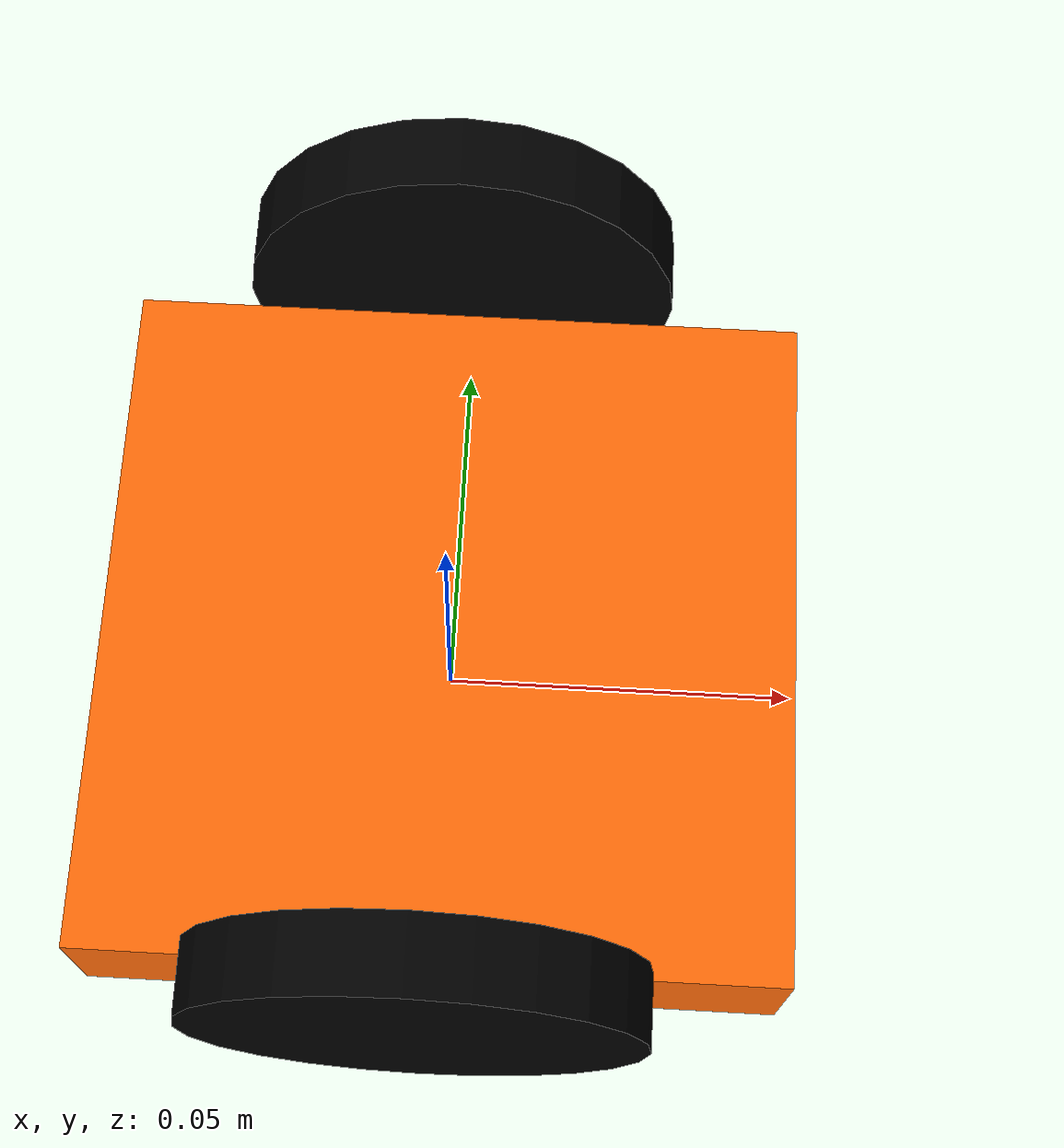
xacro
<?xml version="1.0"?>

<robot name="sociobots" xmlns:xacro="http://www.ros.org/wiki/xacro">

<xacro:property name="PI" value="3.1415926535897931"/>

<xacro:property name="chassisHeight" value="0.02"/>
<xacro:property name="chassisLength" value="0.095"/>
<xacro:property name="chassisWidth" value="0.095"/>
<xacro:property name="chassis_clearance" value="0.015"/>
<xacro:property name="chassisMass" value="1"/>

<xacro:property name="casterRadius" value="0.005"/>
<xacro:property name="casterMass" value=".005"/>

<xacro:property name="wheelWidth" value="0.01"/>
<xacro:property name="wheelRadius" value="0.03"/>
<xacro:property name="wheelPos" value="0.0485"/>
<xacro:property name="wheelMass" value="0.005"/>

<xacro:property name="cameraSize" value="0.05"/>
<xacro:property name="cameraMass" value="0.1"/>

 <xacro:include filename="$(find sociobots_description)/urdf/sociobots.gazebo" />
 <xacro:include filename="$(find sociobots_description)/urdf/materials.xacro" />
 <xacro:include filename="$(find sociobots_description)/urdf/macros.xacro" />

<link name="footprint" />

<joint name="base_joint" type="fixed">
  <parent link="footprint"/>
  <child link="chassis"/>
</joint>

<link name='chassis'>
  <collision>
    <origin xyz="0 0 ${chassis_clearance}" rpy="0 0 0"/>
    <geometry>
      <box size="${chassisLength} ${chassisWidth} ${chassisHeight}"/>
    </geometry>
  </collision>
  <visual>
    <origin xyz="0 0 ${chassis_clearance}" rpy="0 0 0"/>
    <geometry>
      <box size="${chassisLength} ${chassisWidth} ${chassisHeight}"/>
    </geometry>
    <material name="orange"/>
  </visual>
  <inertial>
    <origin xyz="0 0 ${wheelRadius}" rpy="0 0 0"/>
    <mass value="${chassisMass}"/>
    <box_inertia m="${chassisMass}" x="${chassisLength}" y="${chassisWidth}" z="${chassisHeight}"/>
  </inertial>
</link>

<joint name="caster_front_joint" type="fixed">
  <parent link="chassis"/>
  <child link="caster_front_link"/>
  <origin xyz="${casterRadius-chassisLength/2} 0.0 0.007" rpy="${-PI/2} 0 0"/>
</joint>

<link name="caster_front_link">
  <collision>
    <geometry>
      <cylinder length="0.0079" radius="0.0079"/>
    </geometry>
    <material name="red"/>
    <origin rpy="0 0 0" xyz="0 0 0"/>
  </collision>
  <inertial>
    <mass value="0.01" />
    <origin xyz="0 0 0" />
    <inertia ixx="0.001" ixy="0.0" ixz="0.0"
             iyy="0.001" iyz="0.0"
             izz="0.001" />
  </inertial>
</link>

<joint name="caster_back_joint" type="fixed">
  <parent link="chassis"/>
  <child link="caster_back_link"/>
  <origin xyz="${chassisLength/2-casterRadius} 0.0 0.009" rpy="${-PI/2} 0 0"/>
</joint>

<link name="caster_back_link">
  <collision>
    <geometry>
      <cylinder length="0.0079" radius="0.0079"/>
    </geometry>
    <material name="red"/>
    <origin rpy="0 0 0" xyz="0 0 0"/>
  </collision>
  <inertial>
    <mass value="0.01" />
    <origin xyz="0 0 0" />
    <inertia ixx="0.001" ixy="0.0" ixz="0.0"
             iyy="0.001" iyz="0.0"
             izz="0.001" />
  </inertial>
</link>

<wheel lr="left" tY="1"/>
<wheel lr="right" tY="-1"/>

</robot>

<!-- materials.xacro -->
<robot>

<material name="black">
  <color rgba="0.0 0.0 0.0 1.0"/>
</material>

<material name="blue">
  <color rgba="0.0 0.0 0.8 1.0"/>
</material>

<material name="green">
  <color rgba="0.0 0.8 0.0 1.0"/>
</material>

<material name="grey">
  <color rgba="0.2 0.2 0.2 1.0"/>
</material>

<material name="orange">
  <color rgba="${255/255} ${108/255} ${10/255} 1.0"/>
</material>

<material name="brown">
  <color rgba="${222/255} ${207/255} ${195/255} 1.0"/>
</material>

<material name="red">
  <color rgba="0.8 0.0 0.0 1.0"/>
</material>

<material name="white">
  <color rgba="1.0 1.0 1.0 1.0"/>
</material>

</robot>

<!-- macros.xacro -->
<robot>

<macro name="cylinder_inertia" params="m r h">
  <inertia  ixx="${m*(3*r*r+h*h)/12}" ixy = "0" ixz = "0"
    iyy="${m*(3*r*r+h*h)/12}" iyz = "0"
    izz="${m*r*r/2}"
  />
</macro>

<macro name="box_inertia" params="m x y z">
  <inertia  ixx="${m*(y*y+z*z)/12}" ixy = "0" ixz = "0"
    iyy="${m*(x*x+z*z)/12}" iyz = "0"
    izz="${m*(x*x+z*z)/12}"
  />
</macro>

<macro name="sphere_inertia" params="m r">
  <inertia  ixx="${2*m*r*r/5}" ixy = "0" ixz = "0"
    iyy="${2*m*r*r/5}" iyz = "0"
    izz="${2*m*r*r/5}"
  />
</macro>

<macro name="wheel" params="lr tY">

<link name="${lr}_wheel">
  <collision>
    <origin xyz="0 0 0" rpy="0 ${PI/2} ${PI/2}" />
    <geometry>
      <cylinder length="${wheelWidth}" radius="${wheelRadius}"/>
    </geometry>
  </collision>

  <visual>
    <origin xyz="0 0 0" rpy="0 ${PI/2} ${PI/2}" />
    <geometry>
      <cylinder length="${wheelWidth}" radius="${wheelRadius}"/>
    </geometry>
    <material name="black"/>
  </visual>

  <inertial>
    <origin xyz="0 0 0" rpy="0 ${PI/2} ${PI/2}" />
    <mass value="${wheelMass}"/>
    <cylinder_inertia m="${wheelMass}" r="${wheelRadius}" h="${wheelWidth}"/>
  </inertial>
</link>

<gazebo reference="${lr}_wheel">
  <mu1 value="1.0"/>
  <mu2 value="1.0"/>
  <kp  value="10000000.0" />
  <kd  value="1.0" />
  <fdir1 value="1 0 0"/>
  <material>Gazebo/Black</material>
</gazebo>

<joint name="${lr}_wheel_hinge" type="continuous">
  <parent link="chassis"/>
  <child link="${lr}_wheel"/>
<origin xyz="${-wheelPos+chassisLength/2} ${tY*wheelWidth/2+tY*chassisWidth/2} ${wheelRadius}" rpy="0 0 0" />
  <axis xyz="0 1 0" rpy="0 0 0" />
  <limit effort="100" velocity="100"/>
  <joint_properties damping="0.0" friction="0.0"/>
</joint>

<transmission name="${lr}_trans">
  <type>transmission_interface/SimpleTransmission</type>
  <joint name="${lr}_wheel_hinge"/>
  <actuator name="${lr}Motor">
    <hardwareInterface>EffortJointInterface</hardwareInterface>
    <mechanicalReduction>10</mechanicalReduction>
  </actuator>
</transmission>

</macro>
</robot>
